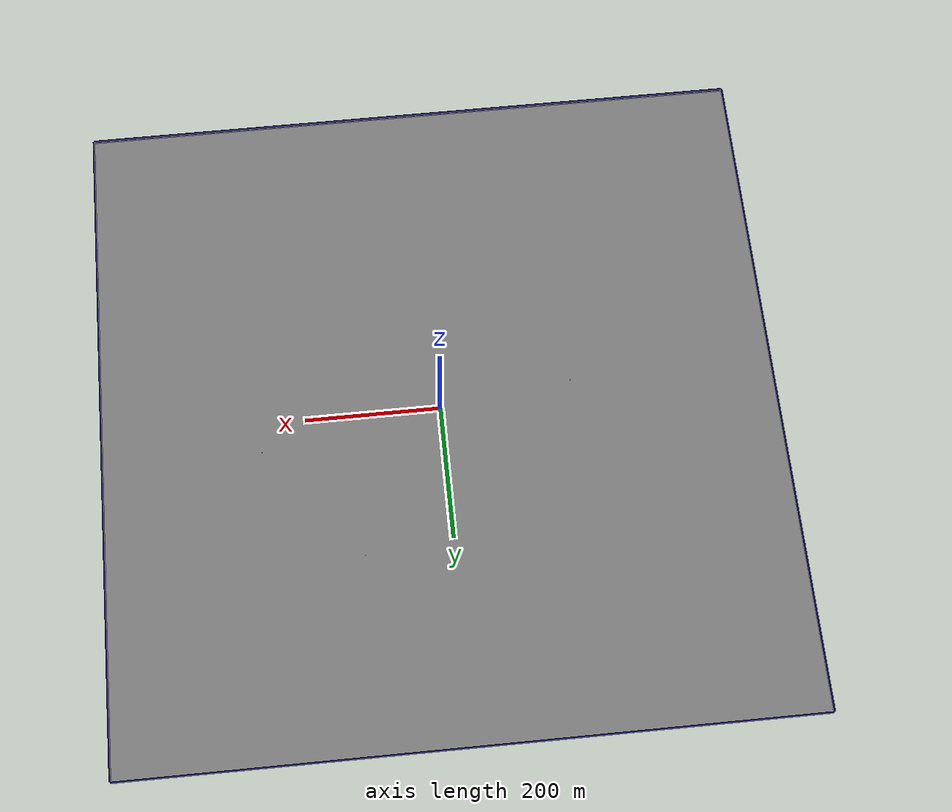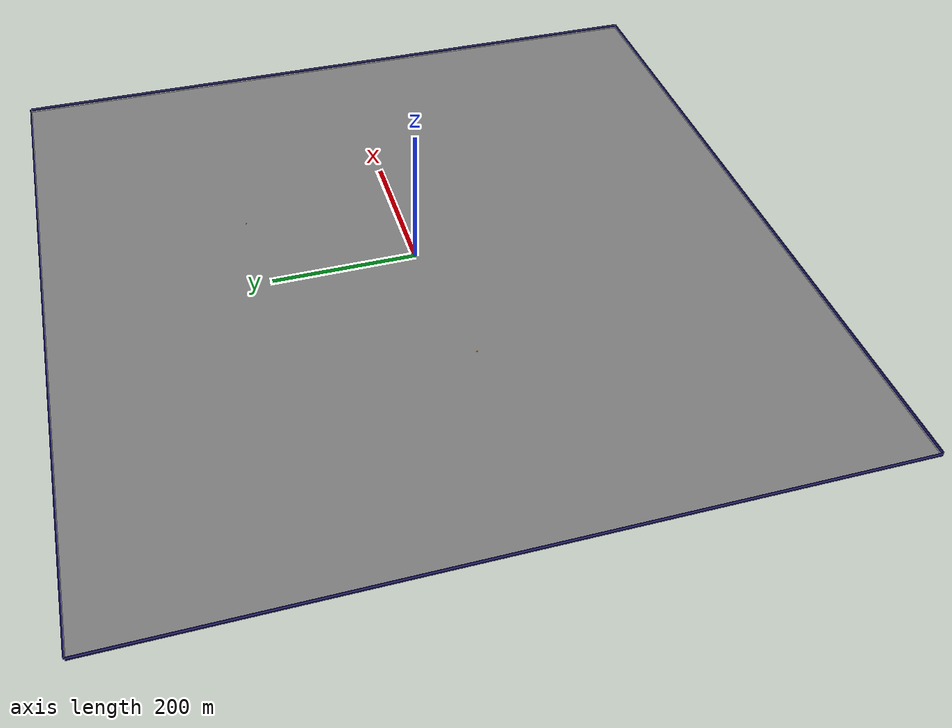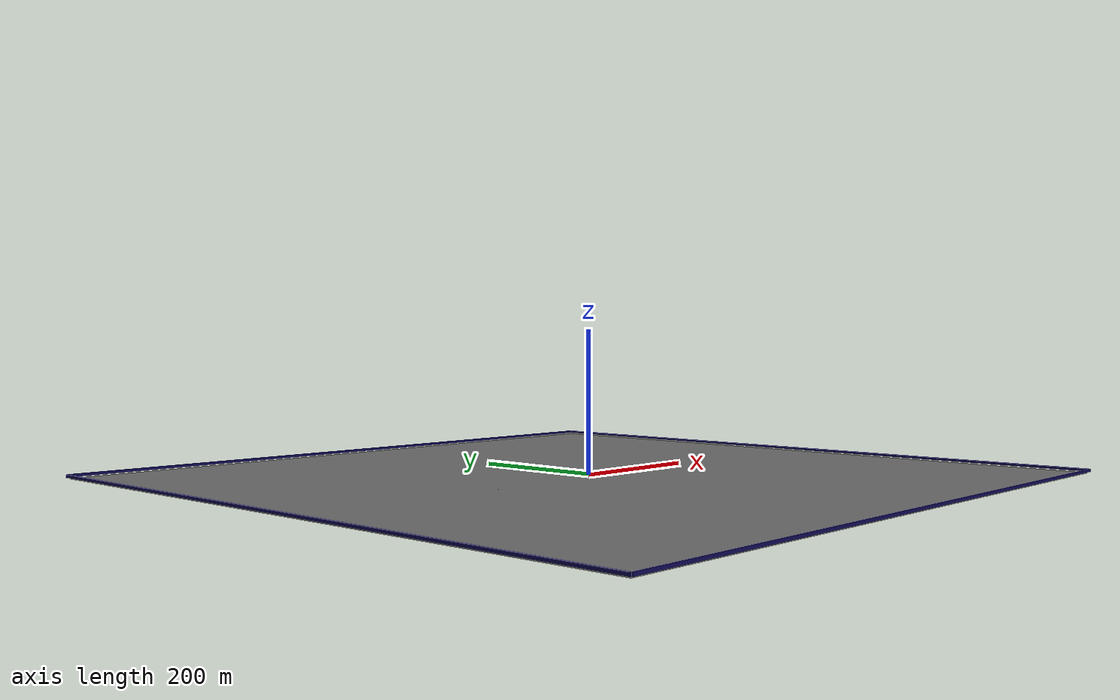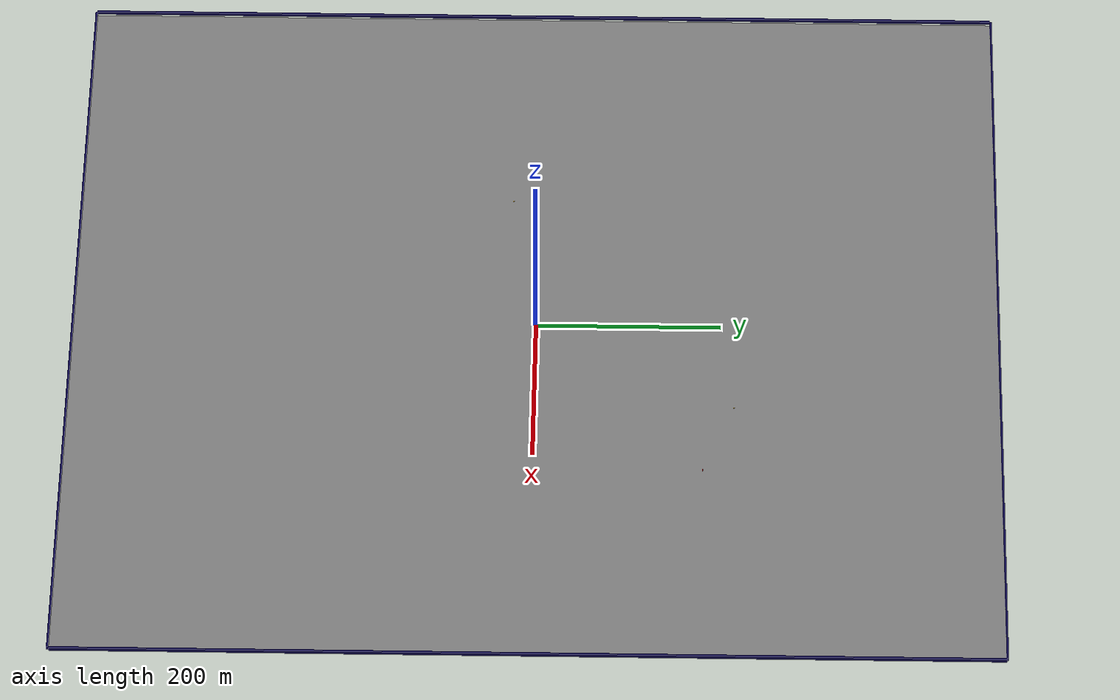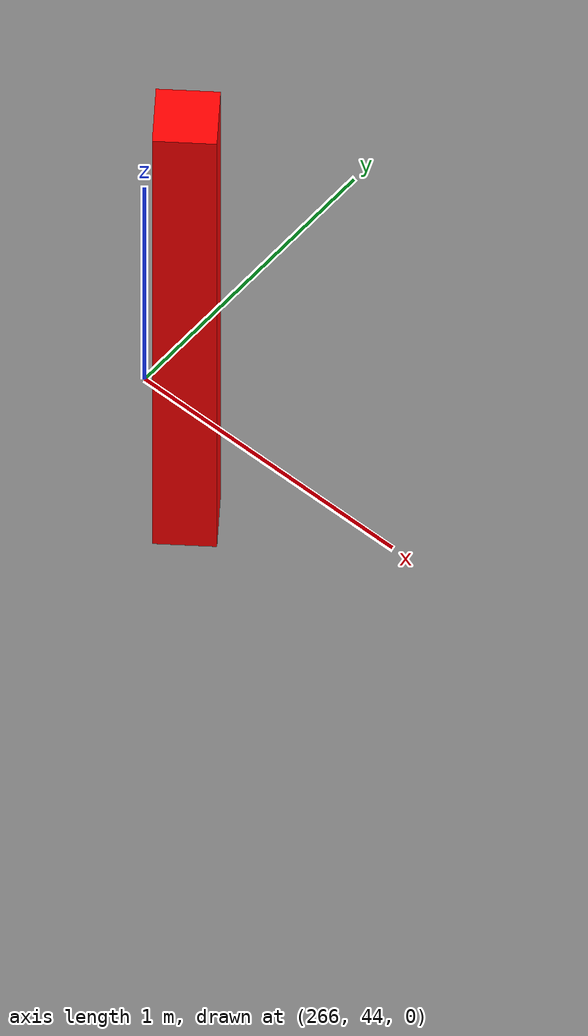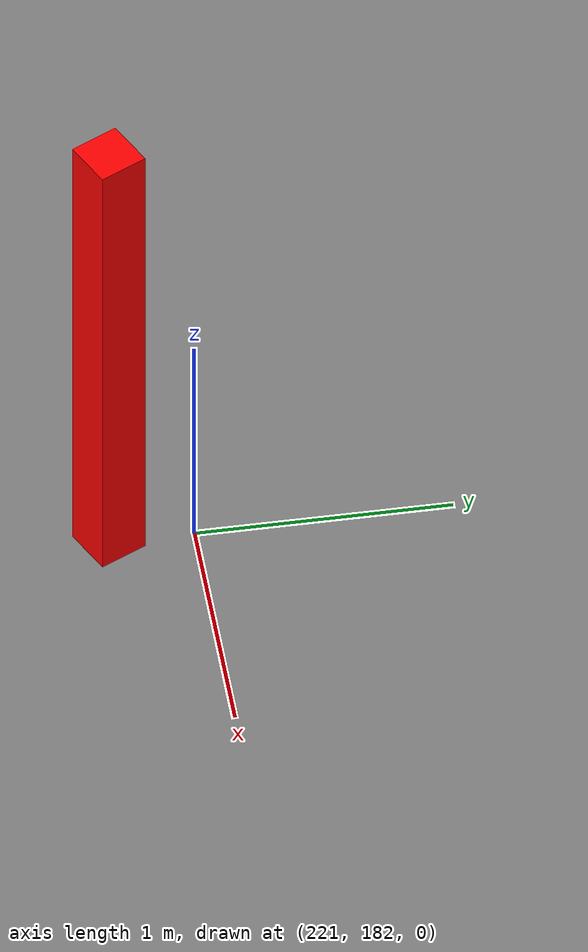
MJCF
<mujoco model="unnamed_model">
  <default>
    <default class="/" />
    <default class="border/" />
    <default class="border_1/" />
    <default class="border_2/" />
    <default class="border_3/" />
    <default class="agentplaceholder/" />
    <default class="placeholder_box/" />
    <default class="tree0/" />
    <default class="tree1/" />
    <default class="stone/" />
    <default class="stone_1/" />
  </default>
  <worldbody>
    <body name="border/">
      <body name="border/border" pos="0 501 2">
        <geom name="border/border_geom" class="border/" type="box" size="500 1 2" rgba="0.035000000000000003 0.016 0.28999999999999998 1" />
      </body>
    </body>
    <body name="border_1/">
      <body name="border_1/border" pos="0 -501 2">
        <geom name="border_1/border_geom" class="border_1/" type="box" size="500 1 2" rgba="0.035000000000000003 0.016 0.28999999999999998 1" />
      </body>
    </body>
    <body name="border_2/">
      <body name="border_2/border" pos="501 0 2">
        <geom name="border_2/border_geom" class="border_2/" type="box" size="1 500 2" rgba="0.035000000000000003 0.016 0.28999999999999998 1" />
      </body>
    </body>
    <body name="border_3/">
      <body name="border_3/border" pos="-501 0 2">
        <geom name="border_3/border_geom" class="border_3/" type="box" size="1 500 2" rgba="0.035000000000000003 0.016 0.28999999999999998 1" />
      </body>
    </body>
    <body euler="0 0 -120.72357641035448" name="agentplaceholder/">
      <joint name="agentplaceholder/boxagent_freeJoint/" class="/" type="free" />
      <body name="agentplaceholder/agentplaceholder" pos="-250 0 3" euler="0 0 0">
        <geom name="agentplaceholder/boxagent_geom" class="agentplaceholder/" type="box" size="0.5 0.5 0.5" rgba="0.94899999999999995 0.74509999999999998 0.1333 1" euler="0 0 0" />
      </body>
    </body>
    <body name="placeholder_box/">
      <body name="placeholder_box/placeholder_box" pos="-197.67734999999999 -27.322099999999978 0.5" euler="0 0 -131.77511984281301">
        <geom name="placeholder_box/box_geom" class="placeholder_box/" type="box" size="0.5 0.5 0.5" rgba="0.94899999999999995 0.74509999999999998 0.1333 1" euler="0 0 0" />
      </body>
    </body>
    <body name="tree0/">
      <body name="tree0/tree0" pos="266.44285000000002 43.676799999999957 0.10000000000000001" euler="0 0 36.919342507833619">
        <geom name="tree0/tree_geom" class="tree0/" type="box" size="0.10000000000000001 0.10000000000000001 2" rgba="1 0 0 1" />
      </body>
    </body>
    <body name="tree1/">
      <body name="tree1/tree1" pos="220.98734999999999 181.67060000000015 0.10000000000000001" euler="0 0 116.01393722219086">
        <geom name="tree1/tree_geom" class="tree1/" type="box" size="0.10000000000000001 0.10000000000000001 2" rgba="1 0 0 1" />
      </body>
    </body>
    <body name="stone/">
      <body name="stone/stone" pos="336.42180000000002 -15.467899999999986 0.10000000000000001" euler="0 0 27.236686120672402">
        <geom name="stone/stone_geom" class="stone/" type="box" size="0.10000000000000001 0.10000000000000001 2" rgba="1 0 0 1" />
      </body>
    </body>
    <body name="stone_1/">
      <body name="stone_1/stone" pos="153.04345000000001 477.88239999999996 0.10000000000000001" euler="0 0 -130.48638862269826">
        <geom name="stone_1/stone_geom" class="stone_1/" type="box" size="0.10000000000000001 0.10000000000000001 2" rgba="1 0 0 1" />
      </body>
    </body>
    <geom name="base_plane" class="/" type="plane" size="500 500 0.10000000000000001" />
  </worldbody>
</mujoco>
